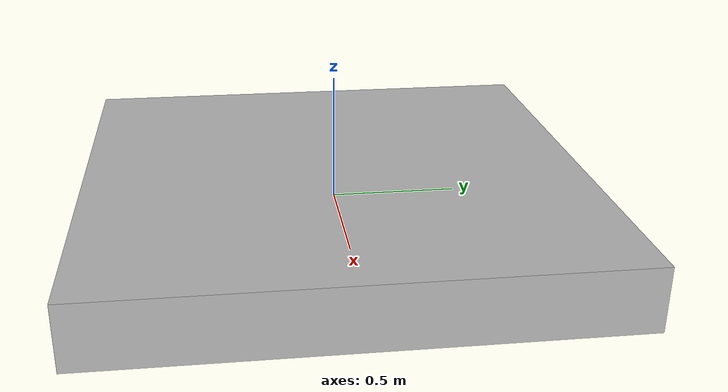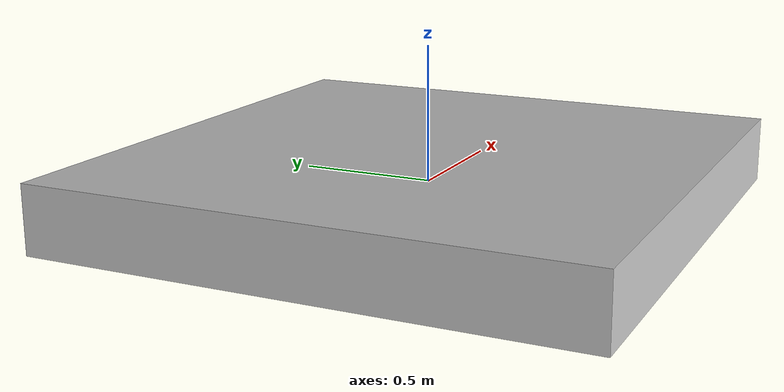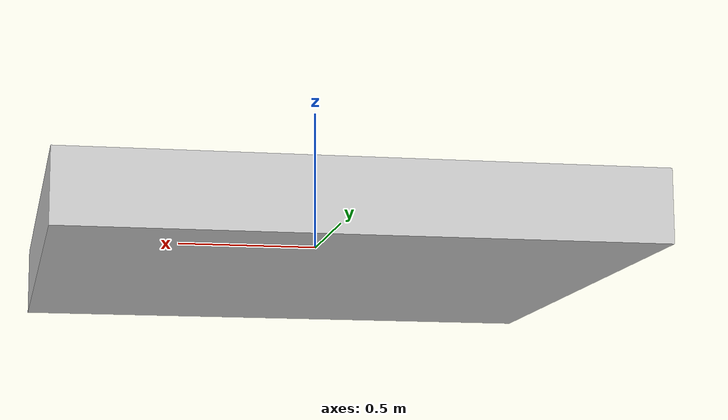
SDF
<?xml version="1.0" ?>
<sdf version="1.5">
  <model name="plate">
    <pose>0 0 0 0 0 0</pose>
    <static>true</static>
    <link name="link">
	<gravity>0</gravity>

      <collision name="collision">
        <geometry>
          <box>
              <size>1.5 1.0 0.2</size>
          </box>
        </geometry>
	<surface>
          <contact>
            <ode>
              <max_vel>0.1</max_vel>
              <min_depth>0.001</min_depth>
            </ode>
          </contact>
        </surface>
      </collision>
      <visual name="visual">
        <geometry>
          <mesh>
            <uri>model://plate/meshes/model.dae</uri>
          </mesh>
	</geometry>
      </visual>
    </link>
  </model>
</sdf>
